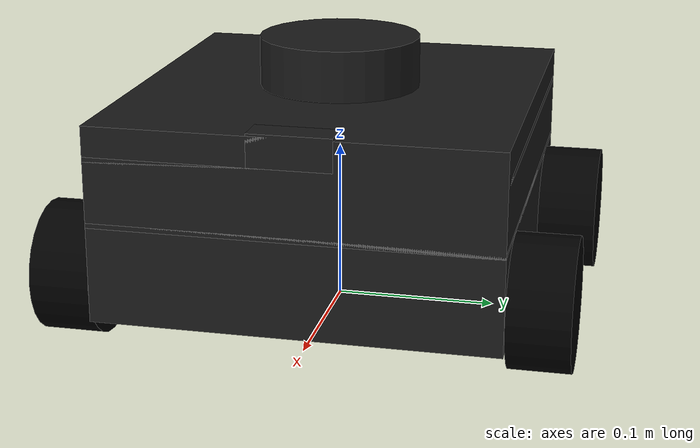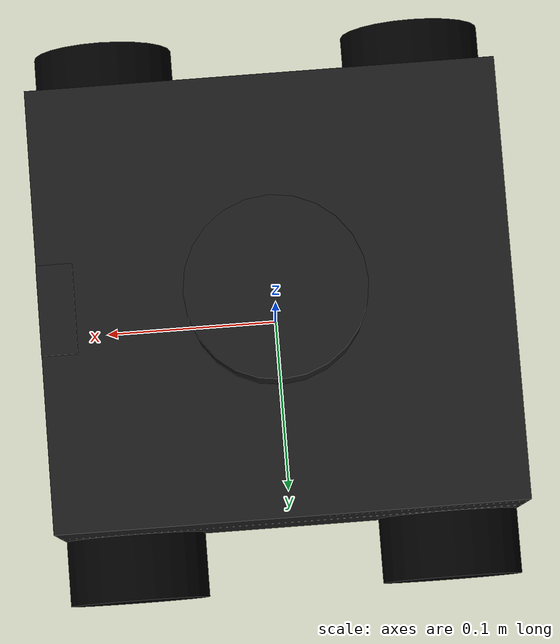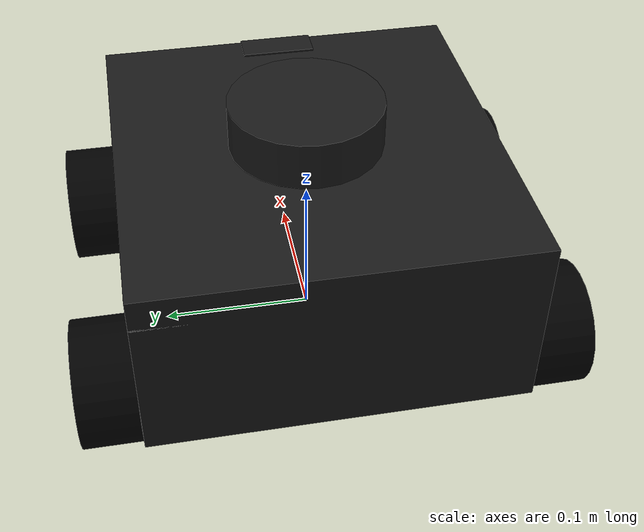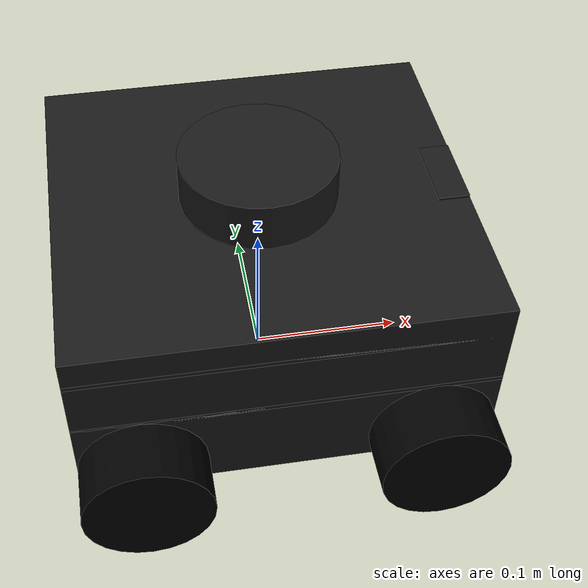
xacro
<?xml version="1.0"?>
<robot name="robot" xmlns:xacro="http://www.ros.org/wiki/xacro">

  <!-- Define robot name prefix - change this to customize all link/joint names -->
  <xacro:property name="name" value="robot"/>

  <!-- Include the sub-components -->
  <xacro:include filename="$(find sme_robot_mobile_description)/urdf/sme_robot_mobile_base.xacro"/>
  <xacro:include filename="$(find sme_robot_mobile_description)/urdf/sme_robot_mobile_sensors.xacro"/>

  <!--
    INSTANTIATE ROBOT
    1. Create the mobile base (chassis + wheels)
    2. Attach sensors to the chassis
  -->

  <!-- Create the base with name prefix 'robot' -->
  <xacro:mobile_base name="${name}"/>

  <!-- Attach sensors to the top plate -->
  <xacro:add_sensors name="${name}" parent="${name}_top_plate"/>

  <!--
    GAZEBO PLUGINS
    These are required for the robot to actually move in simulation.
  -->
  <gazebo>
    <!-- Diff Drive (Skid Steer) -->
    <plugin filename="ignition-gazebo-diff-drive-system" name="ignition::gazebo::systems::DiffDrive">
      <left_joint>${name}_front_left_wheel_joint</left_joint>
      <left_joint>${name}_rear_left_wheel_joint</left_joint>
      <right_joint>${name}_front_right_wheel_joint</right_joint>
      <right_joint>${name}_rear_right_wheel_joint</right_joint>
      <wheel_separation>0.2824</wheel_separation>
      <wheel_radius>0.04</wheel_radius>
      <odom_publish_frequency>50</odom_publish_frequency>
      <topic>/cmd_vel</topic>
      <odom_topic>/odom</odom_topic>
      <tf_topic>/tf</tf_topic>
      <frame_id>odom</frame_id>
      <child_frame_id>${name}_footprint</child_frame_id>
    </plugin>

    <!-- Joint State Publisher -->
    <plugin filename="ignition-gazebo-joint-state-publisher-system" name="ignition::gazebo::systems::JointStatePublisher">
      <topic>joint_states</topic>
    </plugin>
  </gazebo>

</robot>

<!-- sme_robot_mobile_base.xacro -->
<robot xmlns:xacro="http://www.ros.org/wiki/xacro">

  <!--
    MACRO: MOBILE BASE
    This macro defines the chassis and the 4 wheels.
    Arguments:
      - name: Prefix for the links/joints to avoid naming conflicts
  -->
  <xacro:macro name="mobile_base" params="name">

    <!--
      BASE FOOTPRINT
      This is a virtual link that sits on the ground (z=0).
      It's useful for navigation algorithms to know where the "floor" is relative to the robot.
    -->
    <link name="${name}_footprint"/>

    <joint name="${name}_footprint_joint" type="fixed">
      <parent link="${name}_footprint"/>
      <child link="${name}_chassis"/>
      <origin xyz="0 0 0.08" rpy="0 0 0"/> <!-- Raise chassis 8cm off ground (wheel diameter) -->
    </joint>

    <!--
      CHASSIS LINK (Virtual - for collision and inertia)
      The main body of the robot.
    -->
    <link name="${name}_chassis">
      <visual>
        <geometry>
          <box size="0.26 0.245 0.12"/>
        </geometry>
        <material name="black">
          <color rgba="0.1 0.1 0.1 1"/>
        </material>
      </visual>
      <collision>
        <geometry>
          <box size="0.26 0.245 0.12"/>
        </geometry>
      </collision>
      <inertial>
        <mass value="15.0"/> <!-- Heavy base for stability -->
        <inertia ixx="0.1" ixy="0" ixz="0" iyy="0.1" iyz="0" izz="0.1"/>
      </inertial>
    </link>

    <gazebo reference="${name}_chassis">
      <visual>
        <material>
          <ambient>0.2 0.2 0.2 1</ambient>
          <diffuse>0.2 0.2 0.2 1</diffuse>
          <specular>0.2 0.2 0.2 1</specular>
        </material>
      </visual>
    </gazebo>

    <!--
      BOTTOM PLATE
      Lower acrylic plate (3mm thickness)
    -->
    <link name="${name}_base_link">
      <visual>
        <geometry>
          <box size="0.26 0.245 0.003"/> <!-- 26cm x 24.5cm x 3mm -->
        </geometry>
        <material name="black">
          <color rgba="0.1 0.1 0.1 1"/>
        </material>
      </visual>
    </link>

    <gazebo reference="${name}_base_link">
      <visual>
        <material>
          <ambient>0.1 0.1 0.1 1</ambient>
          <diffuse>0.1 0.1 0.1 1</diffuse>
          <specular>0.1 0.1 0.1 1</specular>
        </material>
      </visual>
    </gazebo>

    <joint name="${name}_base_link_joint" type="fixed">
      <parent link="${name}_chassis"/>
      <child link="${name}_base_link"/>
      <origin xyz="0 0 0" rpy="0 0 0"/> <!-- Bottom of chassis (12cm/2 = 6cm down) -->
    </joint>

    <!--
      TOP PLATE
      Upper acrylic plate (3mm thickness)
    -->
    <link name="${name}_top_plate">
      <visual>
        <geometry>
          <box size="0.26 0.245 0.003"/> <!-- 26cm x 24.5cm x 3mm -->
        </geometry>
        <material name="black">
          <color rgba="0.1 0.1 0.1 1"/>
        </material>
      </visual>
    </link>

    <gazebo reference="${name}_top_plate">
      <visual>
        <material>
          <ambient>0.1 0.1 0.1 1</ambient>
          <diffuse>0.1 0.1 0.1 1</diffuse>
          <specular>0.1 0.1 0.1 1</specular>
        </material>
      </visual>
    </gazebo>

    <joint name="${name}_top_plate_joint" type="fixed">
      <parent link="${name}_base_link"/>
      <child link="${name}_top_plate"/>
      <origin xyz="0 0 0.04" rpy="0 0 0"/> <!-- Top of chassis (12cm/2 = 6cm up) -->
    </joint>

    <!--
      WHEEL MACRO
      Helper to create 4 identical wheels.
    -->
    <xacro:macro name="wheel" params="prefix x_pos y_pos z_pos">
      <link name="${name}_${prefix}_wheel">
        <visual>
          <geometry>
            <cylinder radius="0.04" length="0.037"/> <!-- 80mm diameter, 37mm width -->
          </geometry>
          <material name="black">
            <color rgba="0 0 0 1"/>
          </material>
        </visual>
        <collision>
          <geometry>
            <cylinder radius="0.04" length="0.037"/>
          </geometry>
        </collision>
        <inertial>
          <mass value="1.0"/>
          <inertia ixx="0.01" ixy="0" ixz="0" iyy="0.01" iyz="0" izz="0.01"/>
        </inertial>
      </link>

      <gazebo reference="${name}_${prefix}_wheel">
        <visual>
          <material>
            <ambient>0.1 0.1 0.1 1</ambient>
            <diffuse>0.1 0.1 0.1 1</diffuse>
            <specular>0.1 0.1 0.1 1</specular>
          </material>
        </visual>
      </gazebo>

      <joint name="${name}_${prefix}_wheel_joint" type="continuous">
        <parent link="${name}_chassis"/>
        <child link="${name}_${prefix}_wheel"/>
        <!-- Rotate cylinder to be upright for a wheel -->
        <origin xyz="${x_pos} ${y_pos} ${z_pos}" rpy="-1.5707 0 0"/>
        <axis xyz="0 0 1"/> <!-- Rotate around the cylinder's Z axis (which is robot's Y) -->
      </joint>
    </xacro:macro>

    <!-- Instantiate 4 wheels at corners of 26cm x 24.5cm plate -->
    <!-- x_pos = 0.26/2 (plate width/2) - 0.04 wheel radius = 0.09 -->
    <!-- y_pos = 0.245/2 (plate height/2) + 0.0374/2 wheel width = 0.1412 -->
    <!-- z_pos = -0.04 wheel radius to base link (bottom plate) -->
    <xacro:wheel prefix="front_left"  x_pos="0.09"  y_pos="0.1412" z_pos="-0.04"/> <!-- robot_base_front_left -->
    <xacro:wheel prefix="front_right" x_pos="0.09"  y_pos="-0.1412" z_pos="-0.04"/> <!-- robot_base_front_right -->
    <xacro:wheel prefix="rear_left"   x_pos="-0.09" y_pos="0.1412" z_pos="-0.04"/> <!-- robot_base_rear_left -->
    <xacro:wheel prefix="rear_right"  x_pos="-0.09" y_pos="-0.1412" z_pos="-0.04"/> <!-- robot_base_rear_right -->

  </xacro:macro>
</robot>

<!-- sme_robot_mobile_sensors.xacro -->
<robot xmlns:xacro="http://www.ros.org/wiki/xacro">

  <!--
    MACRO: SENSORS
    Adds a Lidar and a Camera to the robot.
    Arguments:
      - parent: The link to attach sensors to.
  -->
  <xacro:macro name="add_sensors" params="name parent">

    <!--
      LIDAR SENSOR
      Used for 2D mapping and navigation (AMCL/Gmapping).
    -->
    <link name="${name}_lidar_link">
      <visual>
        <geometry>
          <cylinder radius="0.05" length="0.05"/>
        </geometry>
        <material name="black"/>
      </visual>
    </link>

    <joint name="${name}_lidar_joint" type="fixed">
      <parent link="${parent}"/>
      <child link="${name}_lidar_link"/>
      <origin xyz="0 0 0.0265" rpy="0 0 0"/> <!-- Mounted on top of plate: 1.5mm (half plate) + 25mm (half lidar height) -->
    </joint>

    <gazebo reference="${name}_lidar_link">
      <visual>
        <material>
          <ambient>0.1 0.1 0.1 1</ambient>
          <diffuse>0.1 0.1 0.1 1</diffuse>
          <specular>0.1 0.1 0.1 1</specular>
        </material>
      </visual>
    </gazebo>

    <!--
      CAMERA SENSOR
      Used for visual perception.
    -->
    <link name="${name}_camera_link">
      <visual>
        <geometry>
          <box size="0.02 0.05 0.02"/>
        </geometry>
        <material name="black"/>
      </visual>
    </link>

    <gazebo reference="${name}_camera_link">
      <visual>
        <material>
          <ambient>0.1 0.1 0.1 1</ambient>
          <diffuse>0.1 0.1 0.1 1</diffuse>
          <specular>0.1 0.1 0.1 1</specular>
        </material>
      </visual>
    </gazebo>

    <joint name="${name}_camera_joint" type="fixed">
      <parent link="${parent}"/>
      <child link="${name}_camera_link"/>
      <origin xyz="0.12 0 0.0115" rpy="0 0 0"/> <!-- Mounted on top of plate: 1.5mm (half plate) + 10mm (half camera height) -->
    </joint>

    <!--
      GAZEBO PLUGIN: LIDAR
      This plugin makes the lidar sensor actually publish laser scan data in Gazebo.
    -->
    <gazebo reference="${name}_lidar_link">
      <sensor type="lidar" name="${name}_lidar_sensor">
        <pose>0 0 0 0 0 0</pose>
        <visualize>true</visualize>
        <update_rate>10</update_rate>
        <topic>/scan</topic>
        <lidar>
          <scan>
            <horizontal>
              <samples>360</samples>
              <resolution>1</resolution>
              <min_angle>-3.14159</min_angle>
              <max_angle>3.14159</max_angle>
            </horizontal>
          </scan>
          <range>
            <min>0.1</min>
            <max>10.0</max>
            <resolution>0.01</resolution>
          </range>
          <noise>
            <type>gaussian</type>
            <mean>0.0</mean>
            <stddev>0.01</stddev>
          </noise>
        </lidar>
      </sensor>
    </gazebo>

    <!--
      IMU SENSOR
      Used for orientation and acceleration measurements.
    -->
    <link name="${name}_imu_link">
      <visual>
        <geometry>
          <box size="0.02 0.02 0.01"/>
        </geometry>
        <material name="blue">
          <color rgba="0 0 1 1"/>
        </material>
      </visual>
      <inertial>
        <mass value="0.001"/>
        <origin xyz="0 0 0" rpy="0 0 0"/>
        <inertia ixx="1e-6" ixy="0" ixz="0" iyy="1e-6" iyz="0" izz="1e-6"/>
      </inertial>
    </link>

    <gazebo reference="${name}_imu_link">
      <visual>
        <material>
          <ambient>0.0 0.0 1.0 1</ambient>
          <diffuse>0.0 0.0 1.0 1</diffuse>
          <specular>0.1 0.1 0.1 1</specular>
        </material>
      </visual>
    </gazebo>

    <joint name="${name}_imu_joint" type="fixed">
      <parent link="${parent}"/>
      <child link="${name}_imu_link"/>
      <origin xyz="0 0 0.0115" rpy="0 0 0"/> <!-- Mounted on top of plate: 1.5mm (half plate) + 10mm (half IMU height) -->
    </joint>

    <!--
      GAZEBO PLUGIN: IMU
      This plugin makes the IMU sensor publish orientation, angular velocity, and linear acceleration.
    -->
    <gazebo reference="${name}_imu_link">
      <gravity>true</gravity>
      <sensor name="${name}_imu_sensor" type="imu">
        <always_on>true</always_on>
        <update_rate>100</update_rate>
        <visualize>true</visualize>
        <topic>imu</topic>
        <pose>0 0 0 0 0 0</pose>
      </sensor>
    </gazebo>

  </xacro:macro>
</robot>
